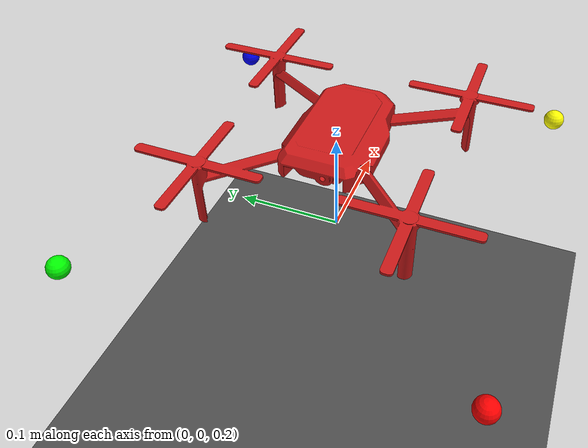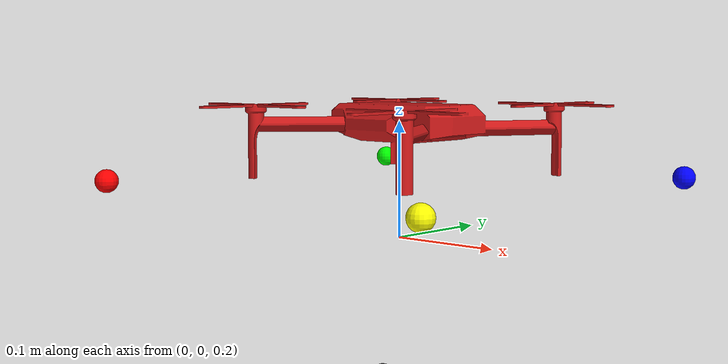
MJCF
<mujoco model="quadrotor_with_platform">
    <compiler angle="degree" coordinate="local"/>
    <option timestep="0.002" gravity="0 0 -9.81"/>

    <!-- Assets -->
    <asset>
        <mesh name="drone_mesh" file="drone.stl" scale="1 1 1"/>
        <mesh name="platform_mesh" file="platform.stl" scale="1.5 1.5 1.5"/>
    </asset>

    <!-- World body -->
    <worldbody>
        <!-- Platform -->
        <body name="platform" pos="0 0 0">
            <geom name="platform_geom" type="mesh" mesh="platform_mesh"
                  contype="1" conaffinity="1" rgba="0.3 0.3 0.3 1" condim="3"/>
        </body>

        <!-- Drone body -->
        <body name="drone" pos="0 0 0.25">
            <!-- Free joint for full 6DOF motion -->
            <joint name="root" type="free"/>
            <inertial pos="0 0 0" mass="0.5" diaginertia="0.0023 0.0023 0.004"/>
            <geom name="drone_geom" type="mesh" mesh="drone_mesh"
                  rgba="0.8 0.1 0.1 1" contype="1" conaffinity="1" condim="3"/>

            <!-- Rotor attachment points -->
            <site name="rotor1_site" pos="0.175 0.175 0" size="0.01" rgba="0 0 1 1"/>
            <site name="rotor2_site" pos="-0.175 0.175 0" size="0.01" rgba="0 1 0 1"/>
            <site name="rotor3_site" pos="-0.175 -0.175 0" size="0.01" rgba="1 0 0 1"/>
            <site name="rotor4_site" pos="0.175 -0.175 0" size="0.01" rgba="1 1 0 1"/>
        </body>
    </worldbody>

    <!-- Actuators -->
    <actuator>
        <!-- Rotor 1 (CW) -->
        <motor name="rotor1_thrust" gear="0 0 1" site="rotor1_site" ctrlrange="0 5"/>
        <motor name="rotor1_torque" gear="0 0 0.02" site="rotor1_site" ctrlrange="-0.1 0.1"/>

        <!-- Rotor 2 (CCW) -->
        <motor name="rotor2_thrust" gear="0 0 1" site="rotor2_site" ctrlrange="0 5"/>
        <motor name="rotor2_torque" gear="0 0 -0.02" site="rotor2_site" ctrlrange="-0.1 0.1"/>

        <!-- Rotor 3 (CW) -->
        <motor name="rotor3_thrust" gear="0 0 1" site="rotor3_site" ctrlrange="0 5"/>
        <motor name="rotor3_torque" gear="0 0 0.02" site="rotor3_site" ctrlrange="-0.1 0.1"/>

        <!-- Rotor 4 (CCW) -->
        <motor name="rotor4_thrust" gear="0 0 1" site="rotor4_site" ctrlrange="0 5"/>
        <motor name="rotor4_torque" gear="0 0 -0.02" site="rotor4_site" ctrlrange="-0.1 0.1"/>
    </actuator>
</mujoco>
